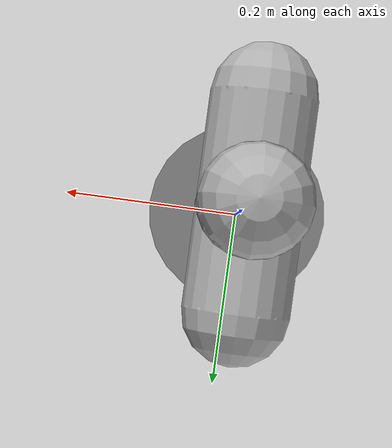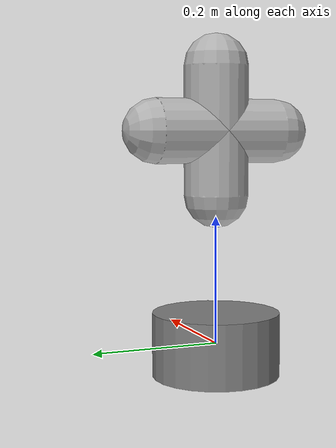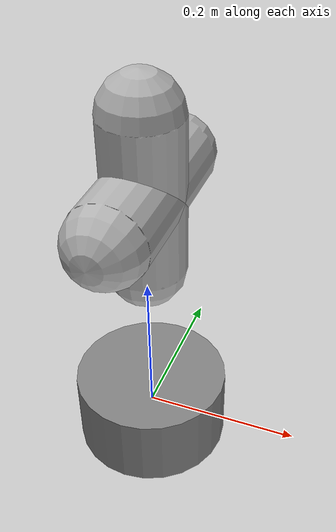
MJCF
<mujoco model="franka_panda_humanoid_challenge">
    <compiler angle="radian" meshdir="assets" latitude="0" longitude="0"/>
    <option timestep="0.002" gravity="0 0 -9.81"/>

    <worldbody>
        <light pos="0 0 3" dir="0 0 -1"/>
        <body name="base" pos="0 0 0">
            <inertial pos="0 0 0.05" mass="4.0" diaginertia="0.4 0.4 0.4"/>
            <geom type="cylinder" size="0.1 0.05" rgba="0.5 0.5 0.5 1"/>

            <!-- Joint 1 -->
            <body name="link1" pos="0 0 0.333">
                <joint name="joint1" axis="0 0 1" range="-2.8973 2.8973" limited="true"/>
                <geom type="capsule" size="0.05 0.1" rgba="0.7 0.7 0.7 1"/>

                <!-- Joint 2 -->
                <body name="link2" pos="0 0 0" quat="0.707107 -0.707107 0 0">
                    <joint name="joint2" axis="0 0 1" range="-1.7628 1.7628" limited="true"/>
                    <geom type="capsule" size="0.05 0.1" rgba="0.7 0.7 0.7 1"/>
                </body>
            </body>
        </body>
    </worldbody>

    <actuator>
        <motor joint="joint1" name="torq_j1" ctrlrange="-87 87" ctrllimited="true"/>
        <motor joint="joint2" name="torq_j2" ctrlrange="-87 87" ctrllimited="true"/>
    </actuator>
</mujoco>
